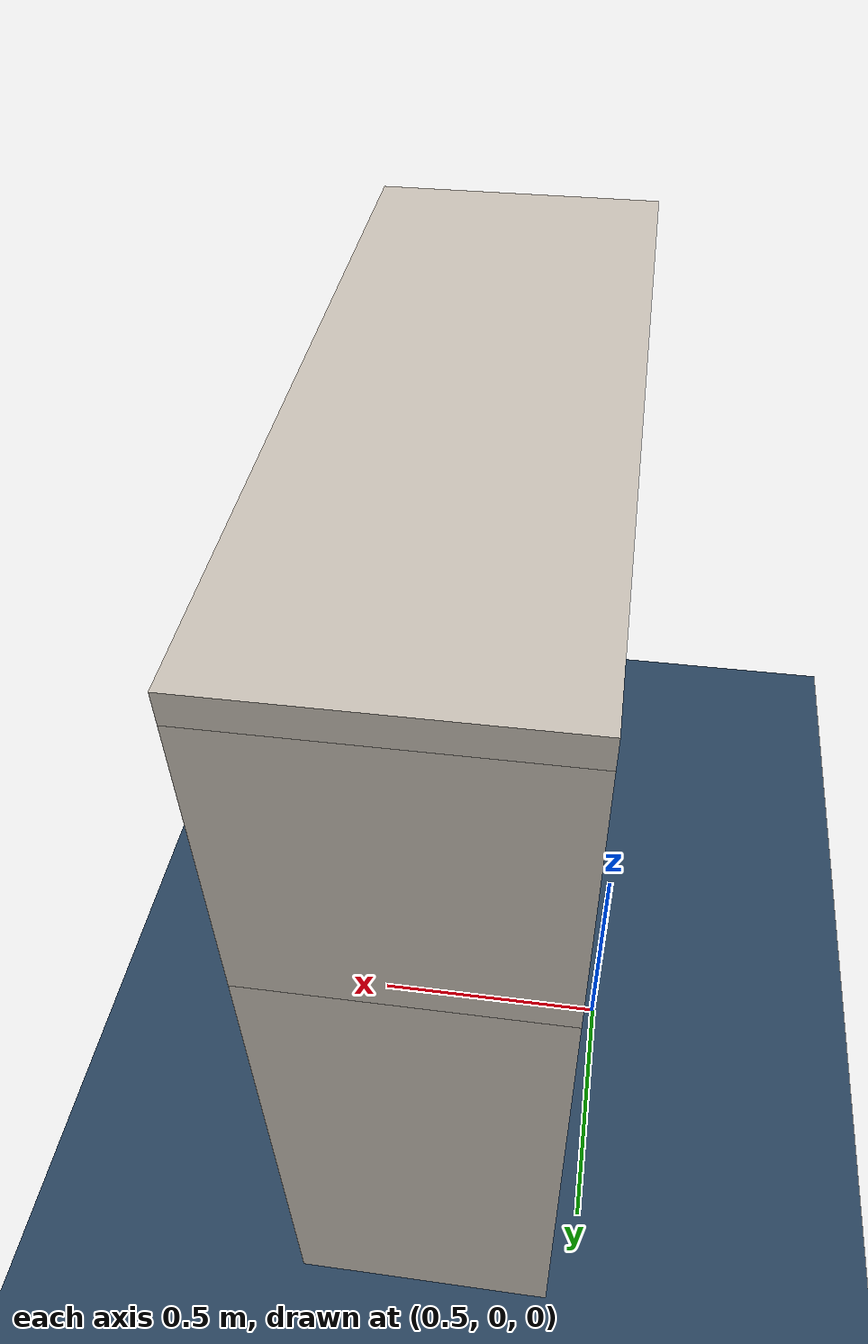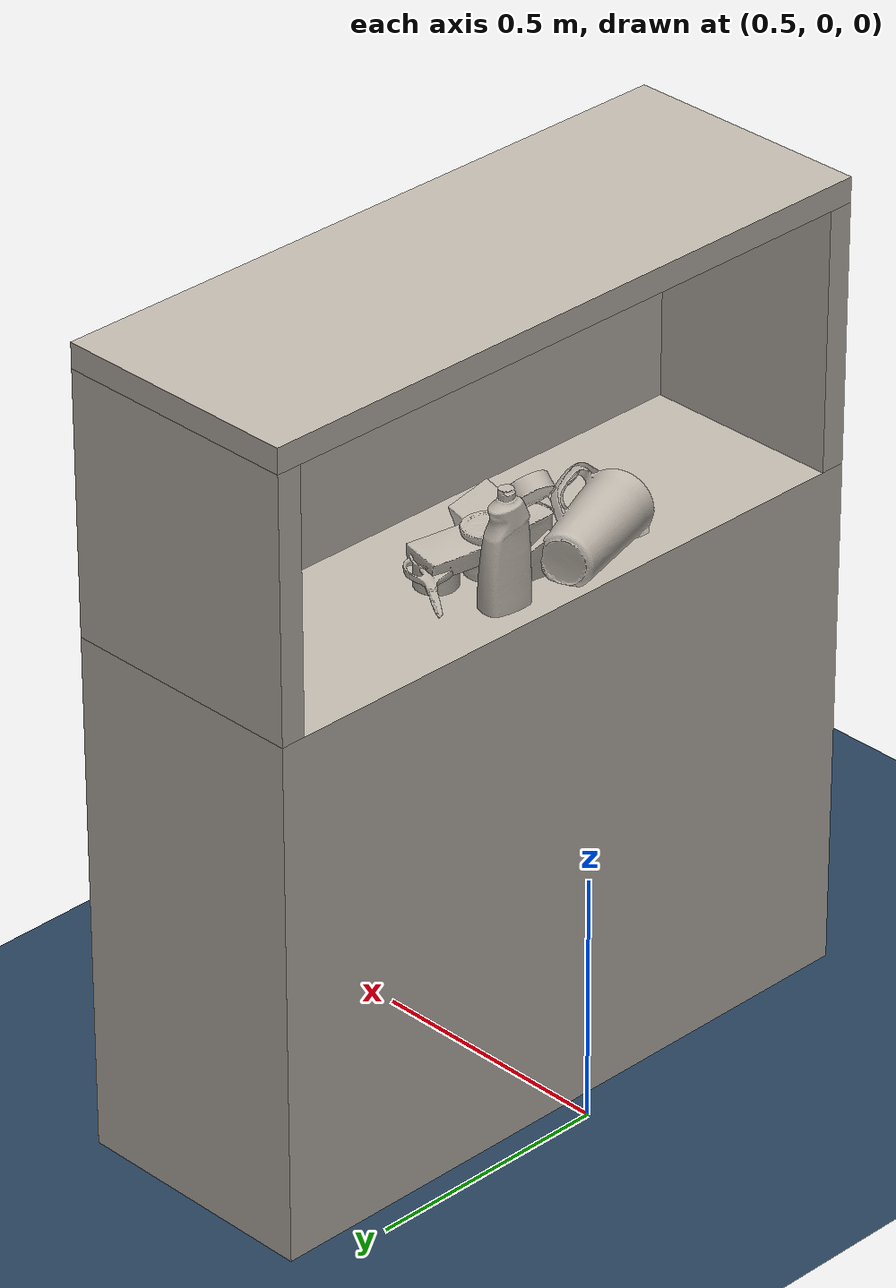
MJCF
<mujoco model="World">

  <compiler angle="radian" balanceinertia="true" inertiafromgeom="true" meshdir="/home/pracsys/GraspClutter6D_local" texturedir="/home/pracsys/GraspClutter6D_local" autolimits="true" />

  <option integrator="Euler" cone="elliptic" solver="CG" noslip_iterations="2">
    <flag warmstart="disable" multiccd="enable" />
  </option>

  <default>
    <geom density="10" />
  </default>

  <asset>

    <texture type="skybox" builtin="flat" rgb1="1 1 1" rgb2="0 0 0" width="512" height="512" />
    <texture name="grid" type="2d" builtin="checker" width="512" height="512" rgb1=".1 .2 .3" rgb2=".2 .3 .4" />
    <material name="grid" texture="grid" texrepeat="2 2" texuniform="true" specular="0" shininess="0" reflectance="0" emission="1" />

    <texture file="models/rs_table/ceramic.png" type="cube" name="tex-ceramic" />
    <material name="table_ceramic" reflectance="0.0" shininess="0.0" specular="0.2" texrepeat="1 1" texture="tex-ceramic" />
  <texture name="obj_000001_0_tex" type="2d" file="models_obj_m/obj_000001/obj_000001.png" /><material name="obj_000001_0_mat" texture="obj_000001_0_tex" specular="1.0" shininess="0.0" /><mesh name="obj_000001_0_vis" file="models_obj_m/obj_000001/obj_000001.obj" /><mesh name="obj_000001_0_obj_000001_collision_0" file="models_obj_m/obj_000001/obj_000001_collision_0.obj" /><mesh name="obj_000001_0_obj_000001_collision_1" file="models_obj_m/obj_000001/obj_000001_collision_1.obj" /><mesh name="obj_000001_0_obj_000001_collision_2" file="models_obj_m/obj_000001/obj_000001_collision_2.obj" /><mesh name="obj_000001_0_obj_000001_collision_3" file="models_obj_m/obj_000001/obj_000001_collision_3.obj" /><texture name="obj_000003_0_tex" type="2d" file="models_obj_m/obj_000003/obj_000003.png" /><material name="obj_000003_0_mat" texture="obj_000003_0_tex" specular="1.0" shininess="0.0" /><mesh name="obj_000003_0_vis" file="models_obj_m/obj_000003/obj_000003.obj" /><mesh name="obj_000003_0_obj_000003_collision_0" file="models_obj_m/obj_000003/obj_000003_collision_0.obj" /><mesh name="obj_000003_0_obj_000003_collision_1" file="models_obj_m/obj_000003/obj_000003_collision_1.obj" /><texture name="obj_000006_0_tex" type="2d" file="models_obj_m/obj_000006/obj_000006.png" /><material name="obj_000006_0_mat" texture="obj_000006_0_tex" specular="1.0" shininess="0.0" /><mesh name="obj_000006_0_vis" file="models_obj_m/obj_000006/obj_000006.obj" /><mesh name="obj_000006_0_obj_000006_collision_0" file="models_obj_m/obj_000006/obj_000006_collision_0.obj" /><mesh name="obj_000006_0_obj_000006_collision_1" file="models_obj_m/obj_000006/obj_000006_collision_1.obj" /><mesh name="obj_000006_0_obj_000006_collision_2" file="models_obj_m/obj_000006/obj_000006_collision_2.obj" /><mesh name="obj_000006_0_obj_000006_collision_3" file="models_obj_m/obj_000006/obj_000006_collision_3.obj" /><mesh name="obj_000006_0_obj_000006_collision_4" file="models_obj_m/obj_000006/obj_000006_collision_4.obj" /><mesh name="obj_000006_0_obj_000006_collision_5" file="models_obj_m/obj_000006/obj_000006_collision_5.obj" /><mesh name="obj_000006_0_obj_000006_collision_6" file="models_obj_m/obj_000006/obj_000006_collision_6.obj" /><mesh name="obj_000006_0_obj_000006_collision_7" file="models_obj_m/obj_000006/obj_000006_collision_7.obj" /><mesh name="obj_000006_0_obj_000006_collision_8" file="models_obj_m/obj_000006/obj_000006_collision_8.obj" /><mesh name="obj_000006_0_obj_000006_collision_9" file="models_obj_m/obj_000006/obj_000006_collision_9.obj" /><mesh name="obj_000006_0_obj_000006_collision_10" file="models_obj_m/obj_000006/obj_000006_collision_10.obj" /><mesh name="obj_000006_0_obj_000006_collision_11" file="models_obj_m/obj_000006/obj_000006_collision_11.obj" /><mesh name="obj_000006_0_obj_000006_collision_12" file="models_obj_m/obj_000006/obj_000006_collision_12.obj" /><mesh name="obj_000006_0_obj_000006_collision_13" file="models_obj_m/obj_000006/obj_000006_collision_13.obj" /><texture name="obj_000007_0_tex" type="2d" file="models_obj_m/obj_000007/obj_000007.png" /><material name="obj_000007_0_mat" texture="obj_000007_0_tex" specular="1.0" shininess="0.0" /><mesh name="obj_000007_0_vis" file="models_obj_m/obj_000007/obj_000007.obj" /><mesh name="obj_000007_0_obj_000007_collision_0" file="models_obj_m/obj_000007/obj_000007_collision_0.obj" /><mesh name="obj_000007_0_obj_000007_collision_1" file="models_obj_m/obj_000007/obj_000007_collision_1.obj" /><mesh name="obj_000007_0_obj_000007_collision_2" file="models_obj_m/obj_000007/obj_000007_collision_2.obj" /><mesh name="obj_000007_0_obj_000007_collision_3" file="models_obj_m/obj_000007/obj_000007_collision_3.obj" /><mesh name="obj_000007_0_obj_000007_collision_4" file="models_obj_m/obj_000007/obj_000007_collision_4.obj" /><mesh name="obj_000007_0_obj_000007_collision_5" file="models_obj_m/obj_000007/obj_000007_collision_5.obj" /><mesh name="obj_000007_0_obj_000007_collision_6" file="models_obj_m/obj_000007/obj_000007_collision_6.obj" /><mesh name="obj_000007_0_obj_000007_collision_7" file="models_obj_m/obj_000007/obj_000007_collision_7.obj" /><mesh name="obj_000007_0_obj_000007_collision_8" file="models_obj_m/obj_000007/obj_000007_collision_8.obj" /><texture name="obj_000009_0_tex" type="2d" file="models_obj_m/obj_000009/obj_000010.png" /><material name="obj_000009_0_mat" texture="obj_000009_0_tex" specular="1.0" shininess="0.0" /><mesh name="obj_000009_0_vis" file="models_obj_m/obj_000009/obj_000009.obj" /><mesh name="obj_000009_0_obj_000009_collision_0" file="models_obj_m/obj_000009/obj_000009_collision_0.obj" /><mesh name="obj_000009_0_obj_000009_collision_1" file="models_obj_m/obj_000009/obj_000009_collision_1.obj" /><mesh name="obj_000009_0_obj_000009_collision_2" file="models_obj_m/obj_000009/obj_000009_collision_2.obj" /><mesh name="obj_000009_0_obj_000009_collision_3" file="models_obj_m/obj_000009/obj_000009_collision_3.obj" /><mesh name="obj_000009_0_obj_000009_collision_4" file="models_obj_m/obj_000009/obj_000009_collision_4.obj" /><mesh name="obj_000009_0_obj_000009_collision_5" file="models_obj_m/obj_000009/obj_000009_collision_5.obj" /><mesh name="obj_000009_0_obj_000009_collision_6" file="models_obj_m/obj_000009/obj_000009_collision_6.obj" /><mesh name="obj_000009_0_obj_000009_collision_7" file="models_obj_m/obj_000009/obj_000009_collision_7.obj" /><mesh name="obj_000009_0_obj_000009_collision_8" file="models_obj_m/obj_000009/obj_000009_collision_8.obj" /><mesh name="obj_000009_0_obj_000009_collision_9" file="models_obj_m/obj_000009/obj_000009_collision_9.obj" /><mesh name="obj_000009_0_obj_000009_collision_10" file="models_obj_m/obj_000009/obj_000009_collision_10.obj" /><mesh name="obj_000009_0_obj_000009_collision_11" file="models_obj_m/obj_000009/obj_000009_collision_11.obj" /><mesh name="obj_000009_0_obj_000009_collision_12" file="models_obj_m/obj_000009/obj_000009_collision_12.obj" /><mesh name="obj_000009_0_obj_000009_collision_13" file="models_obj_m/obj_000009/obj_000009_collision_13.obj" /><mesh name="obj_000009_0_obj_000009_collision_14" file="models_obj_m/obj_000009/obj_000009_collision_14.obj" /><mesh name="obj_000009_0_obj_000009_collision_15" file="models_obj_m/obj_000009/obj_000009_collision_15.obj" /><mesh name="obj_000009_0_obj_000009_collision_16" file="models_obj_m/obj_000009/obj_000009_collision_16.obj" /><mesh name="obj_000009_0_obj_000009_collision_17" file="models_obj_m/obj_000009/obj_000009_collision_17.obj" /><mesh name="obj_000009_0_obj_000009_collision_18" file="models_obj_m/obj_000009/obj_000009_collision_18.obj" /><mesh name="obj_000009_0_obj_000009_collision_19" file="models_obj_m/obj_000009/obj_000009_collision_19.obj" /><texture name="obj_000011_0_tex" type="2d" file="models_obj_m/obj_000011/obj_000011.png" /><material name="obj_000011_0_mat" texture="obj_000011_0_tex" specular="1.0" shininess="0.0" /><mesh name="obj_000011_0_vis" file="models_obj_m/obj_000011/obj_000011.obj" /><mesh name="obj_000011_0_obj_000011_collision_0" file="models_obj_m/obj_000011/obj_000011_collision_0.obj" /><mesh name="obj_000011_0_obj_000011_collision_1" file="models_obj_m/obj_000011/obj_000011_collision_1.obj" /><texture name="obj_000012_0_tex" type="2d" file="models_obj_m/obj_000012/obj_000013.png" /><material name="obj_000012_0_mat" texture="obj_000012_0_tex" specular="1.0" shininess="0.0" /><mesh name="obj_000012_0_vis" file="models_obj_m/obj_000012/obj_000012.obj" /><mesh name="obj_000012_0_obj_000012_collision_0" file="models_obj_m/obj_000012/obj_000012_collision_0.obj" /><mesh name="obj_000012_0_obj_000012_collision_1" file="models_obj_m/obj_000012/obj_000012_collision_1.obj" /><mesh name="obj_000012_0_obj_000012_collision_2" file="models_obj_m/obj_000012/obj_000012_collision_2.obj" /><texture name="obj_000014_0_tex" type="2d" file="models_obj_m/obj_000014/obj_000014.png" /><material name="obj_000014_0_mat" texture="obj_000014_0_tex" specular="1.0" shininess="0.0" /><mesh name="obj_000014_0_vis" file="models_obj_m/obj_000014/obj_000014.obj" /><mesh name="obj_000014_0_obj_000014_collision_0" file="models_obj_m/obj_000014/obj_000014_collision_0.obj" /><mesh name="obj_000014_0_obj_000014_collision_1" file="models_obj_m/obj_000014/obj_000014_collision_1.obj" /><mesh name="obj_000014_0_obj_000014_collision_2" file="models_obj_m/obj_000014/obj_000014_collision_2.obj" /><mesh name="obj_000014_0_obj_000014_collision_3" file="models_obj_m/obj_000014/obj_000014_collision_3.obj" /><mesh name="obj_000014_0_obj_000014_collision_4" file="models_obj_m/obj_000014/obj_000014_collision_4.obj" /><mesh name="obj_000014_0_obj_000014_collision_5" file="models_obj_m/obj_000014/obj_000014_collision_5.obj" /><mesh name="obj_000014_0_obj_000014_collision_6" file="models_obj_m/obj_000014/obj_000014_collision_6.obj" /><mesh name="obj_000014_0_obj_000014_collision_7" file="models_obj_m/obj_000014/obj_000014_collision_7.obj" /><mesh name="obj_000014_0_obj_000014_collision_8" file="models_obj_m/obj_000014/obj_000014_collision_8.obj" /><mesh name="obj_000014_0_obj_000014_collision_9" file="models_obj_m/obj_000014/obj_000014_collision_9.obj" /><mesh name="obj_000014_0_obj_000014_collision_10" file="models_obj_m/obj_000014/obj_000014_collision_10.obj" /><mesh name="obj_000014_0_obj_000014_collision_11" file="models_obj_m/obj_000014/obj_000014_collision_11.obj" /><mesh name="obj_000014_0_obj_000014_collision_12" file="models_obj_m/obj_000014/obj_000014_collision_12.obj" /><mesh name="obj_000014_0_obj_000014_collision_13" file="models_obj_m/obj_000014/obj_000014_collision_13.obj" /><mesh name="obj_000014_0_obj_000014_collision_14" file="models_obj_m/obj_000014/obj_000014_collision_14.obj" /><mesh name="obj_000014_0_obj_000014_collision_15" file="models_obj_m/obj_000014/obj_000014_collision_15.obj" /><mesh name="obj_000014_0_obj_000014_collision_16" file="models_obj_m/obj_000014/obj_000014_collision_16.obj" /><mesh name="obj_000014_0_obj_000014_collision_17" file="models_obj_m/obj_000014/obj_000014_collision_17.obj" /><mesh name="obj_000014_0_obj_000014_collision_18" file="models_obj_m/obj_000014/obj_000014_collision_18.obj" /><mesh name="obj_000014_0_obj_000014_collision_19" file="models_obj_m/obj_000014/obj_000014_collision_19.obj" /><mesh name="obj_000014_0_obj_000014_collision_20" file="models_obj_m/obj_000014/obj_000014_collision_20.obj" /><mesh name="obj_000014_0_obj_000014_collision_21" file="models_obj_m/obj_000014/obj_000014_collision_21.obj" /><mesh name="obj_000014_0_obj_000014_collision_22" file="models_obj_m/obj_000014/obj_000014_collision_22.obj" /><mesh name="obj_000014_0_obj_000014_collision_23" file="models_obj_m/obj_000014/obj_000014_collision_23.obj" /><mesh name="obj_000014_0_obj_000014_collision_24" file="models_obj_m/obj_000014/obj_000014_collision_24.obj" /><mesh name="obj_000014_0_obj_000014_collision_25" file="models_obj_m/obj_000014/obj_000014_collision_25.obj" /><mesh name="obj_000014_0_obj_000014_collision_26" file="models_obj_m/obj_000014/obj_000014_collision_26.obj" /><mesh name="obj_000014_0_obj_000014_collision_27" file="models_obj_m/obj_000014/obj_000014_collision_27.obj" /><mesh name="obj_000014_0_obj_000014_collision_28" file="models_obj_m/obj_000014/obj_000014_collision_28.obj" /><mesh name="obj_000014_0_obj_000014_collision_29" file="models_obj_m/obj_000014/obj_000014_collision_29.obj" /><mesh name="obj_000014_0_obj_000014_collision_30" file="models_obj_m/obj_000014/obj_000014_collision_30.obj" /><mesh name="obj_000014_0_obj_000014_collision_31" file="models_obj_m/obj_000014/obj_000014_collision_31.obj" /><mesh name="obj_000014_0_obj_000014_collision_32" file="models_obj_m/obj_000014/obj_000014_collision_32.obj" /><mesh name="obj_000014_0_obj_000014_collision_33" file="models_obj_m/obj_000014/obj_000014_collision_33.obj" /><mesh name="obj_000014_0_obj_000014_collision_34" file="models_obj_m/obj_000014/obj_000014_collision_34.obj" /><mesh name="obj_000014_0_obj_000014_collision_35" file="models_obj_m/obj_000014/obj_000014_collision_35.obj" /><mesh name="obj_000014_0_obj_000014_collision_36" file="models_obj_m/obj_000014/obj_000014_collision_36.obj" /><mesh name="obj_000014_0_obj_000014_collision_37" file="models_obj_m/obj_000014/obj_000014_collision_37.obj" /><mesh name="obj_000014_0_obj_000014_collision_38" file="models_obj_m/obj_000014/obj_000014_collision_38.obj" /><texture name="obj_000016_0_tex" type="2d" file="models_obj_m/obj_000016/obj_000016.png" /><material name="obj_000016_0_mat" texture="obj_000016_0_tex" specular="1.0" shininess="0.0" /><mesh name="obj_000016_0_vis" file="models_obj_m/obj_000016/obj_000016.obj" /><mesh name="obj_000016_0_obj_000016_collision_0" file="models_obj_m/obj_000016/obj_000016_collision_0.obj" /><mesh name="obj_000016_0_obj_000016_collision_1" file="models_obj_m/obj_000016/obj_000016_collision_1.obj" /><texture name="obj_000017_0_tex" type="2d" file="models_obj_m/obj_000017/obj_000018.png" /><material name="obj_000017_0_mat" texture="obj_000017_0_tex" specular="1.0" shininess="0.0" /><mesh name="obj_000017_0_vis" file="models_obj_m/obj_000017/obj_000017.obj" /><mesh name="obj_000017_0_obj_000017_collision_0" file="models_obj_m/obj_000017/obj_000017_collision_0.obj" /><mesh name="obj_000017_0_obj_000017_collision_1" file="models_obj_m/obj_000017/obj_000017_collision_1.obj" /><mesh name="obj_000017_0_obj_000017_collision_2" file="models_obj_m/obj_000017/obj_000017_collision_2.obj" /><mesh name="obj_000017_0_obj_000017_collision_3" file="models_obj_m/obj_000017/obj_000017_collision_3.obj" /><mesh name="obj_000017_0_obj_000017_collision_4" file="models_obj_m/obj_000017/obj_000017_collision_4.obj" /><mesh name="obj_000017_0_obj_000017_collision_5" file="models_obj_m/obj_000017/obj_000017_collision_5.obj" /><mesh name="obj_000017_0_obj_000017_collision_6" file="models_obj_m/obj_000017/obj_000017_collision_6.obj" /><mesh name="obj_000017_0_obj_000017_collision_7" file="models_obj_m/obj_000017/obj_000017_collision_7.obj" /><mesh name="obj_000017_0_obj_000017_collision_8" file="models_obj_m/obj_000017/obj_000017_collision_8.obj" /><mesh name="obj_000017_0_obj_000017_collision_9" file="models_obj_m/obj_000017/obj_000017_collision_9.obj" /><mesh name="obj_000017_0_obj_000017_collision_10" file="models_obj_m/obj_000017/obj_000017_collision_10.obj" /><mesh name="obj_000017_0_obj_000017_collision_11" file="models_obj_m/obj_000017/obj_000017_collision_11.obj" /><mesh name="obj_000017_0_obj_000017_collision_12" file="models_obj_m/obj_000017/obj_000017_collision_12.obj" /><mesh name="obj_000017_0_obj_000017_collision_13" file="models_obj_m/obj_000017/obj_000017_collision_13.obj" /><mesh name="obj_000017_0_obj_000017_collision_14" file="models_obj_m/obj_000017/obj_000017_collision_14.obj" /><mesh name="obj_000017_0_obj_000017_collision_15" file="models_obj_m/obj_000017/obj_000017_collision_15.obj" /><mesh name="obj_000017_0_obj_000017_collision_16" file="models_obj_m/obj_000017/obj_000017_collision_16.obj" /><mesh name="obj_000017_0_obj_000017_collision_17" file="models_obj_m/obj_000017/obj_000017_collision_17.obj" /><mesh name="obj_000017_0_obj_000017_collision_18" file="models_obj_m/obj_000017/obj_000017_collision_18.obj" /><mesh name="obj_000017_0_obj_000017_collision_19" file="models_obj_m/obj_000017/obj_000017_collision_19.obj" /><mesh name="obj_000017_0_obj_000017_collision_20" file="models_obj_m/obj_000017/obj_000017_collision_20.obj" /><mesh name="obj_000017_0_obj_000017_collision_21" file="models_obj_m/obj_000017/obj_000017_collision_21.obj" /><mesh name="obj_000017_0_obj_000017_collision_22" file="models_obj_m/obj_000017/obj_000017_collision_22.obj" /><mesh name="obj_000017_0_obj_000017_collision_23" file="models_obj_m/obj_000017/obj_000017_collision_23.obj" /><mesh name="obj_000017_0_obj_000017_collision_24" file="models_obj_m/obj_000017/obj_000017_collision_24.obj" /><mesh name="obj_000017_0_obj_000017_collision_25" file="models_obj_m/obj_000017/obj_000017_collision_25.obj" /><mesh name="obj_000017_0_obj_000017_collision_26" file="models_obj_m/obj_000017/obj_000017_collision_26.obj" /><mesh name="obj_000017_0_obj_000017_collision_27" file="models_obj_m/obj_000017/obj_000017_collision_27.obj" /></asset>

  <worldbody>
    <geom name="floor" size="2 2 0.05" type="plane" material="grid" condim="3" />
    <light directional="true" pos="-0.5 0.5 3" dir="0 0 -1" castshadow="false" diffuse="1 1 1" />
    <body name="workspace" pos="0.8 0 0">
      <geom name="shelf_bottom" size="0.25 0.68 0.525" pos="0 0 0.525" type="box" material="table_ceramic" />
      <geom name="shelf_top" size="0.25 0.68 0.025" pos="0 0 1.595" type="box" material="table_ceramic" />
      <geom name="shelf_padding_left" size="0.25 0.025 0.26" pos="0 -0.655 1.31" type="box" material="table_ceramic" />
      <geom name="shelf_padding_right" size="0.25 0.025 0.26" pos="0 0.655 1.31" type="box" material="table_ceramic" />
      <geom name="shelf_padding_back" size="0.05 0.63 0.26" pos="0.2 0 1.31" type="box" material="table_ceramic" />
    </body>
  <body name="obj_000001_0" pos="0.7245698177176012 0.024179529262956884 1.0688049012991612" quat="0.6593119507459271 -0.01876848982819013 0.0016404612545248831 -0.7516334241370872"><joint name="obj_000001_0_joint" type="free" limited="false" actuatorfrclimited="false" /><geom name="obj_000001_0_geom" type="mesh" contype="0" conaffinity="0" group="1" mesh="obj_000001_0_vis" material="obj_000001_0_mat" /><geom type="mesh" contype="3" conaffinity="3" group="3" rgba="0.9088700260871841 0.5571276366315294 0.02905709149002622 1" mesh="obj_000001_0_obj_000001_collision_0" /><geom type="mesh" contype="3" conaffinity="3" group="3" rgba="0.6410593324381463 0.8402607000713928 0.7776918396385317 1" mesh="obj_000001_0_obj_000001_collision_1" /><geom type="mesh" contype="3" conaffinity="3" group="3" rgba="0.7741652165627951 0.3179101861807435 0.21643336209038533 1" mesh="obj_000001_0_obj_000001_collision_2" /><geom type="mesh" contype="3" conaffinity="3" group="3" rgba="0.8899250795032356 0.5115007140285017 0.5329157655053317 1" mesh="obj_000001_0_obj_000001_collision_3" /></body><body name="obj_000003_0" pos="0.6994115541259565 -0.0999912434738991 1.074816696796771" quat="0.2267660082206349 -0.8119123838294886 -0.4430720355865948 0.3050616819286677"><joint name="obj_000003_0_joint" type="free" limited="false" actuatorfrclimited="false" /><geom name="obj_000003_0_geom" type="mesh" contype="0" conaffinity="0" group="1" mesh="obj_000003_0_vis" material="obj_000003_0_mat" /><geom type="mesh" contype="3" conaffinity="3" group="3" rgba="0.522509730671621 0.2757706064801614 0.3354227120316712 1" mesh="obj_000003_0_obj_000003_collision_0" /><geom type="mesh" contype="3" conaffinity="3" group="3" rgba="0.5516880957351997 0.30786775055087157 0.8022185455408283 1" mesh="obj_000003_0_obj_000003_collision_1" /></body><body name="obj_000006_0" pos="0.6725691595237946 -0.01792990980877382 1.211666329774467" quat="0.06437058560630127 0.8551109280938193 -0.29467419484890534 -0.4216738636118891"><joint name="obj_000006_0_joint" type="free" limited="false" actuatorfrclimited="false" /><geom name="obj_000006_0_geom" type="mesh" contype="0" conaffinity="0" group="1" mesh="obj_000006_0_vis" material="obj_000006_0_mat" /><geom type="mesh" contype="3" conaffinity="3" group="3" rgba="0.2826735963389645 0.3732613789385052 0.7850961502526286 1" mesh="obj_000006_0_obj_000006_collision_0" /><geom type="mesh" contype="3" conaffinity="3" group="3" rgba="0.2778119464286495 0.852700815001951 0.9131251478975895 1" mesh="obj_000006_0_obj_000006_collision_1" /><geom type="mesh" contype="3" conaffinity="3" group="3" rgba="0.8020587813288036 0.3025792521954269 0.26202108232011456 1" mesh="obj_000006_0_obj_000006_collision_2" /><geom type="mesh" contype="3" conaffinity="3" group="3" rgba="0.8749284451958235 0.7193776905239141 0.13458988549502138 1" mesh="obj_000006_0_obj_000006_collision_3" /><geom type="mesh" contype="3" conaffinity="3" group="3" rgba="0.2130188599738736 0.6558868892940936 0.9509039115354172 1" mesh="obj_000006_0_obj_000006_collision_4" /><geom type="mesh" contype="3" conaffinity="3" group="3" rgba="0.7150440817211193 0.6337582813459244 0.5959789356841197 1" mesh="obj_000006_0_obj_000006_collision_5" /><geom type="mesh" contype="3" conaffinity="3" group="3" rgba="0.5914430060148156 0.6397733981720453 0.4770481905761884 1" mesh="obj_000006_0_obj_000006_collision_6" /><geom type="mesh" contype="3" conaffinity="3" group="3" rgba="0.5370695134833949 0.5650036394015392 0.4193565416983073 1" mesh="obj_000006_0_obj_000006_collision_7" /><geom type="mesh" contype="3" conaffinity="3" group="3" rgba="0.45822516380627654 0.5322962868917284 0.22216684784693663 1" mesh="obj_000006_0_obj_000006_collision_8" /><geom type="mesh" contype="3" conaffinity="3" group="3" rgba="0.006992755819853924 0.22617836990136309 0.6404316243166618 1" mesh="obj_000006_0_obj_000006_collision_9" /><geom type="mesh" contype="3" conaffinity="3" group="3" rgba="0.11371882398649225 0.6403057750389807 0.6565213489306491 1" mesh="obj_000006_0_obj_000006_collision_10" /><geom type="mesh" contype="3" conaffinity="3" group="3" rgba="0.5479453169554588 0.8715696065342489 0.8827485230284868 1" mesh="obj_000006_0_obj_000006_collision_11" /><geom type="mesh" contype="3" conaffinity="3" group="3" rgba="0.29639456023491106 0.716942263751537 0.6685544064500213 1" mesh="obj_000006_0_obj_000006_collision_12" /><geom type="mesh" contype="3" conaffinity="3" group="3" rgba="0.24060769408938665 0.11426077536513679 0.6643453630239089 1" mesh="obj_000006_0_obj_000006_collision_13" /></body><body name="obj_000007_0" pos="0.7475203179038512 0.10758815512826281 1.1062607629790526" quat="0.4274032105077631 0.015892959352612715 -0.0122699750251547 -0.903838125553218"><joint name="obj_000007_0_joint" type="free" limited="false" actuatorfrclimited="false" /><geom name="obj_000007_0_geom" type="mesh" contype="0" conaffinity="0" group="1" mesh="obj_000007_0_vis" material="obj_000007_0_mat" /><geom type="mesh" contype="3" conaffinity="3" group="3" rgba="0.8352706854217573 0.9362994234831694 0.293846875833475 1" mesh="obj_000007_0_obj_000007_collision_0" /><geom type="mesh" contype="3" conaffinity="3" group="3" rgba="0.19905331661291714 0.4589533019713804 0.06900329109829795 1" mesh="obj_000007_0_obj_000007_collision_1" /><geom type="mesh" contype="3" conaffinity="3" group="3" rgba="0.09308414112438301 0.15050338013169284 0.9151604575537959 1" mesh="obj_000007_0_obj_000007_collision_2" /><geom type="mesh" contype="3" conaffinity="3" group="3" rgba="0.5321495441159548 0.7015834228771671 0.15224241133161276 1" mesh="obj_000007_0_obj_000007_collision_3" /><geom type="mesh" contype="3" conaffinity="3" group="3" rgba="0.23157390654164967 0.05668202494056429 0.16362068486781922 1" mesh="obj_000007_0_obj_000007_collision_4" /><geom type="mesh" contype="3" conaffinity="3" group="3" rgba="0.434682609159569 0.02891498183785912 0.4135716003922958 1" mesh="obj_000007_0_obj_000007_collision_5" /><geom type="mesh" contype="3" conaffinity="3" group="3" rgba="0.3986174188827881 0.6060589903191558 0.6080009673791554 1" mesh="obj_000007_0_obj_000007_collision_6" /><geom type="mesh" contype="3" conaffinity="3" group="3" rgba="0.19756852407433856 0.9438271125215391 0.3383181352472745 1" mesh="obj_000007_0_obj_000007_collision_7" /><geom type="mesh" contype="3" conaffinity="3" group="3" rgba="0.8336516710698538 0.1310754047491739 0.3201867808203366 1" mesh="obj_000007_0_obj_000007_collision_8" /></body><body name="obj_000009_0" pos="0.6757380840162048 -0.013723726581941292 1.1202671559841644" quat="0.724891172863196 0.0037221800408121716 0.0018112822855675947 0.6888509651130975"><joint name="obj_000009_0_joint" type="free" limited="false" actuatorfrclimited="false" /><geom name="obj_000009_0_geom" type="mesh" contype="0" conaffinity="0" group="1" mesh="obj_000009_0_vis" material="obj_000009_0_mat" /><geom type="mesh" contype="3" conaffinity="3" group="3" rgba="0.4701424646800718 0.15058678152224558 0.03232555140522908 1" mesh="obj_000009_0_obj_000009_collision_0" /><geom type="mesh" contype="3" conaffinity="3" group="3" rgba="0.6334264391293729 0.7000588704139452 0.9101191958261439 1" mesh="obj_000009_0_obj_000009_collision_1" /><geom type="mesh" contype="3" conaffinity="3" group="3" rgba="0.4796571013469104 0.35150290582234567 0.6375226777586448 1" mesh="obj_000009_0_obj_000009_collision_2" /><geom type="mesh" contype="3" conaffinity="3" group="3" rgba="0.8005895298046106 0.9629796370374781 0.317100801488033 1" mesh="obj_000009_0_obj_000009_collision_3" /><geom type="mesh" contype="3" conaffinity="3" group="3" rgba="0.7316817429575484 0.8125950918942385 0.9770420869852225 1" mesh="obj_000009_0_obj_000009_collision_4" /><geom type="mesh" contype="3" conaffinity="3" group="3" rgba="0.027540659115147248 0.9471989066929749 0.9744029211039258 1" mesh="obj_000009_0_obj_000009_collision_5" /><geom type="mesh" contype="3" conaffinity="3" group="3" rgba="0.2468027165587915 0.11355498828593935 0.640482643727051 1" mesh="obj_000009_0_obj_000009_collision_6" /><geom type="mesh" contype="3" conaffinity="3" group="3" rgba="0.26381115444349046 0.5064233410291425 0.06434432684247016 1" mesh="obj_000009_0_obj_000009_collision_7" /><geom type="mesh" contype="3" conaffinity="3" group="3" rgba="0.39104113124687934 0.2576147934487044 0.9823472559836796 1" mesh="obj_000009_0_obj_000009_collision_8" /><geom type="mesh" contype="3" conaffinity="3" group="3" rgba="0.9013360285468692 0.8336454994592718 0.7736518361085535 1" mesh="obj_000009_0_obj_000009_collision_9" /><geom type="mesh" contype="3" conaffinity="3" group="3" rgba="0.5638034510545271 0.2309865979911192 0.056178319664080933 1" mesh="obj_000009_0_obj_000009_collision_10" /><geom type="mesh" contype="3" conaffinity="3" group="3" rgba="0.07539982230460429 0.8840212053523439 0.37940438346802385 1" mesh="obj_000009_0_obj_000009_collision_11" /><geom type="mesh" contype="3" conaffinity="3" group="3" rgba="0.12997684997558534 0.2197119572502484 0.7348773851044048 1" mesh="obj_000009_0_obj_000009_collision_12" /><geom type="mesh" contype="3" conaffinity="3" group="3" rgba="0.4102032814193337 0.31374038786638225 0.9229380645994204 1" mesh="obj_000009_0_obj_000009_collision_13" /><geom type="mesh" contype="3" conaffinity="3" group="3" rgba="0.6775180913271598 0.3730860518815964 0.7560922645576079 1" mesh="obj_000009_0_obj_000009_collision_14" /><geom type="mesh" contype="3" conaffinity="3" group="3" rgba="0.20013413652544576 0.046709010626810876 0.4530831720844085 1" mesh="obj_000009_0_obj_000009_collision_15" /><geom type="mesh" contype="3" conaffinity="3" group="3" rgba="0.997743233778264 0.8720065066436486 0.22893873285390964 1" mesh="obj_000009_0_obj_000009_collision_16" /><geom type="mesh" contype="3" conaffinity="3" group="3" rgba="0.2486444461791405 0.8482398554397806 0.9913239367051718 1" mesh="obj_000009_0_obj_000009_collision_17" /><geom type="mesh" contype="3" conaffinity="3" group="3" rgba="0.8552881572534362 0.878526833870521 0.5714311973878448 1" mesh="obj_000009_0_obj_000009_collision_18" /><geom type="mesh" contype="3" conaffinity="3" group="3" rgba="0.6375258423342278 0.3334964947472784 0.042644175833863374 1" mesh="obj_000009_0_obj_000009_collision_19" /></body><body name="obj_000011_0" pos="0.6495585203816787 -0.13977933869306955 1.098293575181354" quat="0.6904436468919618 0.7017309223998565 0.12032141303311339 0.12800015851587748"><joint name="obj_000011_0_joint" type="free" limited="false" actuatorfrclimited="false" /><geom name="obj_000011_0_geom" type="mesh" contype="0" conaffinity="0" group="1" mesh="obj_000011_0_vis" material="obj_000011_0_mat" /><geom type="mesh" contype="3" conaffinity="3" group="3" rgba="0.30507868086283874 0.9701993068122707 0.0021639835779936334 1" mesh="obj_000011_0_obj_000011_collision_0" /><geom type="mesh" contype="3" conaffinity="3" group="3" rgba="0.30046086308937203 0.33184924156596896 0.2382777103232726 1" mesh="obj_000011_0_obj_000011_collision_1" /></body><body name="obj_000012_0" pos="0.626461926020278 0.09133862326412662 1.148777561382147" quat="0.6674003403523239 -0.006876273591183221 0.013066005288060456 -0.7445527396127916"><joint name="obj_000012_0_joint" type="free" limited="false" actuatorfrclimited="false" /><geom name="obj_000012_0_geom" type="mesh" contype="0" conaffinity="0" group="1" mesh="obj_000012_0_vis" material="obj_000012_0_mat" /><geom type="mesh" contype="3" conaffinity="3" group="3" rgba="0.7554614099521485 0.6486382034608017 0.7176584907668884 1" mesh="obj_000012_0_obj_000012_collision_0" /><geom type="mesh" contype="3" conaffinity="3" group="3" rgba="0.7007292636586778 0.4517934483878622 0.09276525431541405 1" mesh="obj_000012_0_obj_000012_collision_1" /><geom type="mesh" contype="3" conaffinity="3" group="3" rgba="0.20665389244215027 0.9686490753588884 0.0818582005279912 1" mesh="obj_000012_0_obj_000012_collision_2" /></body><body name="obj_000014_0" pos="0.7506130240407369 0.11530115565326676 1.0679097220555065" quat="0.6219157023268657 0.00423785189829211 -0.006142560984319312 -0.7830486375411962"><joint name="obj_000014_0_joint" type="free" limited="false" actuatorfrclimited="false" /><geom name="obj_000014_0_geom" type="mesh" contype="0" conaffinity="0" group="1" mesh="obj_000014_0_vis" material="obj_000014_0_mat" /><geom type="mesh" contype="3" conaffinity="3" group="3" rgba="0.16141368952927726 0.8941132712421812 0.5548749728589505 1" mesh="obj_000014_0_obj_000014_collision_0" /><geom type="mesh" contype="3" conaffinity="3" group="3" rgba="0.8498791440201986 0.5078067392722992 0.18104551223069276 1" mesh="obj_000014_0_obj_000014_collision_1" /><geom type="mesh" contype="3" conaffinity="3" group="3" rgba="0.8943954905161718 0.3968195555274622 0.7506667206413482 1" mesh="obj_000014_0_obj_000014_collision_2" /><geom type="mesh" contype="3" conaffinity="3" group="3" rgba="0.35285466454019054 0.3172969522275877 0.7777097891043925 1" mesh="obj_000014_0_obj_000014_collision_3" /><geom type="mesh" contype="3" conaffinity="3" group="3" rgba="0.6717797492805505 0.27468490709077875 0.17325073818140246 1" mesh="obj_000014_0_obj_000014_collision_4" /><geom type="mesh" contype="3" conaffinity="3" group="3" rgba="0.7947496542642261 0.5505795486049172 0.24523806449691898 1" mesh="obj_000014_0_obj_000014_collision_5" /><geom type="mesh" contype="3" conaffinity="3" group="3" rgba="0.055183469003469154 0.8741690348288653 0.6355782986914638 1" mesh="obj_000014_0_obj_000014_collision_6" /><geom type="mesh" contype="3" conaffinity="3" group="3" rgba="0.13714783929055574 0.9099011487118126 0.046849323318082 1" mesh="obj_000014_0_obj_000014_collision_7" /><geom type="mesh" contype="3" conaffinity="3" group="3" rgba="0.5757321500485043 0.7653495890173662 0.11729263428082792 1" mesh="obj_000014_0_obj_000014_collision_8" /><geom type="mesh" contype="3" conaffinity="3" group="3" rgba="0.04262441774970249 0.20853658483044857 0.1703428205193146 1" mesh="obj_000014_0_obj_000014_collision_9" /><geom type="mesh" contype="3" conaffinity="3" group="3" rgba="0.7540479077019692 0.3915149318812796 0.4429325687742387 1" mesh="obj_000014_0_obj_000014_collision_10" /><geom type="mesh" contype="3" conaffinity="3" group="3" rgba="0.9209908675974051 0.10818362438838003 0.6189688407757469 1" mesh="obj_000014_0_obj_000014_collision_11" /><geom type="mesh" contype="3" conaffinity="3" group="3" rgba="0.8239539038983041 0.963565432161378 0.07680378701257484 1" mesh="obj_000014_0_obj_000014_collision_12" /><geom type="mesh" contype="3" conaffinity="3" group="3" rgba="0.3580527646207692 0.9396191389477992 0.6726680134980254 1" mesh="obj_000014_0_obj_000014_collision_13" /><geom type="mesh" contype="3" conaffinity="3" group="3" rgba="0.3187862019948787 0.842895426167915 0.30383779731684313 1" mesh="obj_000014_0_obj_000014_collision_14" /><geom type="mesh" contype="3" conaffinity="3" group="3" rgba="0.8290415048504837 0.43261520532805775 0.4960423319651849 1" mesh="obj_000014_0_obj_000014_collision_15" /><geom type="mesh" contype="3" conaffinity="3" group="3" rgba="0.47137951977516845 0.7080669244219827 0.5190940947326312 1" mesh="obj_000014_0_obj_000014_collision_16" /><geom type="mesh" contype="3" conaffinity="3" group="3" rgba="0.7270019138804638 0.08558543806348451 0.28134693023649016 1" mesh="obj_000014_0_obj_000014_collision_17" /><geom type="mesh" contype="3" conaffinity="3" group="3" rgba="0.2278750701799056 0.45829465031892036 0.24631126738678388 1" mesh="obj_000014_0_obj_000014_collision_18" /><geom type="mesh" contype="3" conaffinity="3" group="3" rgba="0.8345805016638979 0.20150630993040652 0.5303175522053208 1" mesh="obj_000014_0_obj_000014_collision_19" /><geom type="mesh" contype="3" conaffinity="3" group="3" rgba="0.21449831849224799 0.8815788784779822 0.4946040642073185 1" mesh="obj_000014_0_obj_000014_collision_20" /><geom type="mesh" contype="3" conaffinity="3" group="3" rgba="0.5201983270088316 0.07293896462298644 0.47589207267863676 1" mesh="obj_000014_0_obj_000014_collision_21" /><geom type="mesh" contype="3" conaffinity="3" group="3" rgba="0.6790069105260244 0.05281035932712075 0.8960063801553154 1" mesh="obj_000014_0_obj_000014_collision_22" /><geom type="mesh" contype="3" conaffinity="3" group="3" rgba="0.24152118753827823 0.6713577531353322 0.8759765939813601 1" mesh="obj_000014_0_obj_000014_collision_23" /><geom type="mesh" contype="3" conaffinity="3" group="3" rgba="0.8959852812192273 0.6685148885345674 0.043270461595834475 1" mesh="obj_000014_0_obj_000014_collision_24" /><geom type="mesh" contype="3" conaffinity="3" group="3" rgba="0.9103547626218504 0.037810082392731204 0.32968077117363426 1" mesh="obj_000014_0_obj_000014_collision_25" /><geom type="mesh" contype="3" conaffinity="3" group="3" rgba="0.8924690475590995 0.7858539504025231 0.5314529871560677 1" mesh="obj_000014_0_obj_000014_collision_26" /><geom type="mesh" contype="3" conaffinity="3" group="3" rgba="0.8776507752074951 0.006905611208717133 0.13662201660191675 1" mesh="obj_000014_0_obj_000014_collision_27" /><geom type="mesh" contype="3" conaffinity="3" group="3" rgba="0.8980953270074162 0.5018244752305326 0.015371112777743057 1" mesh="obj_000014_0_obj_000014_collision_28" /><geom type="mesh" contype="3" conaffinity="3" group="3" rgba="0.881652186049792 0.6680883818245129 0.8030035683379387 1" mesh="obj_000014_0_obj_000014_collision_29" /><geom type="mesh" contype="3" conaffinity="3" group="3" rgba="0.9161220339223549 0.8259454248436557 0.32114550413575527 1" mesh="obj_000014_0_obj_000014_collision_30" /><geom type="mesh" contype="3" conaffinity="3" group="3" rgba="0.6740594633112692 0.8978357800705399 0.7541896723125306 1" mesh="obj_000014_0_obj_000014_collision_31" /><geom type="mesh" contype="3" conaffinity="3" group="3" rgba="0.0727347622521074 0.5269632119735216 0.3031843793551897 1" mesh="obj_000014_0_obj_000014_collision_32" /><geom type="mesh" contype="3" conaffinity="3" group="3" rgba="0.42563563790720826 0.5797993794734493 0.5845484997962103 1" mesh="obj_000014_0_obj_000014_collision_33" /><geom type="mesh" contype="3" conaffinity="3" group="3" rgba="0.19592235314761497 0.4231444707325488 0.890859832481569 1" mesh="obj_000014_0_obj_000014_collision_34" /><geom type="mesh" contype="3" conaffinity="3" group="3" rgba="0.9949348150733605 0.608647559429353 0.15322985524005972 1" mesh="obj_000014_0_obj_000014_collision_35" /><geom type="mesh" contype="3" conaffinity="3" group="3" rgba="0.7858454240895385 0.323178255755149 0.9736177117477949 1" mesh="obj_000014_0_obj_000014_collision_36" /><geom type="mesh" contype="3" conaffinity="3" group="3" rgba="0.6648284999313376 0.9703306050755396 0.4425452240435842 1" mesh="obj_000014_0_obj_000014_collision_37" /><geom type="mesh" contype="3" conaffinity="3" group="3" rgba="0.8400435277741224 0.6937273949571666 0.6362434619528645 1" mesh="obj_000014_0_obj_000014_collision_38" /></body><body name="obj_000016_0" pos="0.7412033259282311 -0.03359205919046841 1.0833899449652467" quat="0.5942216101928328 0.4807714021849311 0.4797092681480394 0.43085792887429214"><joint name="obj_000016_0_joint" type="free" limited="false" actuatorfrclimited="false" /><geom name="obj_000016_0_geom" type="mesh" contype="0" conaffinity="0" group="1" mesh="obj_000016_0_vis" material="obj_000016_0_mat" /><geom type="mesh" contype="3" conaffinity="3" group="3" rgba="0.26001420709121326 0.2392394811811206 0.8526178870500972 1" mesh="obj_000016_0_obj_000016_collision_0" /><geom type="mesh" contype="3" conaffinity="3" group="3" rgba="0.7022628207821711 0.8409075002048506 0.5809282073216406 1" mesh="obj_000016_0_obj_000016_collision_1" /></body><body name="obj_000017_0" pos="0.6890630745760631 0.17819698871790574 1.095087696606457" quat="0.8211184141811936 0.012854870343268644 -0.005690353644310031 0.5705847194557726"><joint name="obj_000017_0_joint" type="free" limited="false" actuatorfrclimited="false" /><geom name="obj_000017_0_geom" type="mesh" contype="0" conaffinity="0" group="1" mesh="obj_000017_0_vis" material="obj_000017_0_mat" /><geom type="mesh" contype="3" conaffinity="3" group="3" rgba="0.8300607436027256 0.7746450626520026 0.028259677595148802 1" mesh="obj_000017_0_obj_000017_collision_0" /><geom type="mesh" contype="3" conaffinity="3" group="3" rgba="0.8722382693318378 0.7274771061770118 0.3531693377771803 1" mesh="obj_000017_0_obj_000017_collision_1" /><geom type="mesh" contype="3" conaffinity="3" group="3" rgba="0.5980877609329729 0.08964925108942157 0.9827409328247976 1" mesh="obj_000017_0_obj_000017_collision_2" /><geom type="mesh" contype="3" conaffinity="3" group="3" rgba="0.12896852327670105 0.23262496541784183 0.708307388236716 1" mesh="obj_000017_0_obj_000017_collision_3" /><geom type="mesh" contype="3" conaffinity="3" group="3" rgba="0.49139690091838406 0.8926335265499304 0.5725586181467778 1" mesh="obj_000017_0_obj_000017_collision_4" /><geom type="mesh" contype="3" conaffinity="3" group="3" rgba="0.7937783832204612 0.42217433502668733 0.08859246894572148 1" mesh="obj_000017_0_obj_000017_collision_5" /><geom type="mesh" contype="3" conaffinity="3" group="3" rgba="0.31968501261458615 0.055692886468857505 0.13372686667046396 1" mesh="obj_000017_0_obj_000017_collision_6" /><geom type="mesh" contype="3" conaffinity="3" group="3" rgba="0.13222025522357372 0.17526274312101753 0.06896550916264677 1" mesh="obj_000017_0_obj_000017_collision_7" /><geom type="mesh" contype="3" conaffinity="3" group="3" rgba="0.619764861047721 0.6525147311748656 0.1945147804146634 1" mesh="obj_000017_0_obj_000017_collision_8" /><geom type="mesh" contype="3" conaffinity="3" group="3" rgba="0.7542938162430041 0.5932445765901436 0.7103646795954568 1" mesh="obj_000017_0_obj_000017_collision_9" /><geom type="mesh" contype="3" conaffinity="3" group="3" rgba="0.2524389464191312 0.4250197643184034 0.5484201401942239 1" mesh="obj_000017_0_obj_000017_collision_10" /><geom type="mesh" contype="3" conaffinity="3" group="3" rgba="0.12747630615148275 0.8773457669467531 0.2903516195529615 1" mesh="obj_000017_0_obj_000017_collision_11" /><geom type="mesh" contype="3" conaffinity="3" group="3" rgba="0.36705284536176563 0.43857882856348707 0.1921920616144135 1" mesh="obj_000017_0_obj_000017_collision_12" /><geom type="mesh" contype="3" conaffinity="3" group="3" rgba="0.020558595977965055 0.21526825750714773 0.772725517547242 1" mesh="obj_000017_0_obj_000017_collision_13" /><geom type="mesh" contype="3" conaffinity="3" group="3" rgba="0.10547210479742064 0.9890552387987501 0.2674120461420154 1" mesh="obj_000017_0_obj_000017_collision_14" /><geom type="mesh" contype="3" conaffinity="3" group="3" rgba="0.5360270978662599 0.047077211229519134 0.4732059459915734 1" mesh="obj_000017_0_obj_000017_collision_15" /><geom type="mesh" contype="3" conaffinity="3" group="3" rgba="0.32224738434780165 0.15368027561517583 0.33294464645257393 1" mesh="obj_000017_0_obj_000017_collision_16" /><geom type="mesh" contype="3" conaffinity="3" group="3" rgba="0.062153350878422775 0.15503522074777376 0.031107839074490995 1" mesh="obj_000017_0_obj_000017_collision_17" /><geom type="mesh" contype="3" conaffinity="3" group="3" rgba="0.8894341143153127 0.9274654291220618 0.8960713779272304 1" mesh="obj_000017_0_obj_000017_collision_18" /><geom type="mesh" contype="3" conaffinity="3" group="3" rgba="0.6407302652172892 0.7024854384405839 0.8132487939275371 1" mesh="obj_000017_0_obj_000017_collision_19" /><geom type="mesh" contype="3" conaffinity="3" group="3" rgba="0.4219128475173737 0.12864992232644612 0.6362594297911104 1" mesh="obj_000017_0_obj_000017_collision_20" /><geom type="mesh" contype="3" conaffinity="3" group="3" rgba="0.6553489886066428 0.7743604048132783 0.24056368137361295 1" mesh="obj_000017_0_obj_000017_collision_21" /><geom type="mesh" contype="3" conaffinity="3" group="3" rgba="0.0020229106216186343 0.307330070733969 0.17780994515928916 1" mesh="obj_000017_0_obj_000017_collision_22" /><geom type="mesh" contype="3" conaffinity="3" group="3" rgba="0.6179802568288576 0.3727782053738845 0.7596080060713355 1" mesh="obj_000017_0_obj_000017_collision_23" /><geom type="mesh" contype="3" conaffinity="3" group="3" rgba="0.2543795317816884 0.44576637101255845 0.39514403782482055 1" mesh="obj_000017_0_obj_000017_collision_24" /><geom type="mesh" contype="3" conaffinity="3" group="3" rgba="0.1432102771351177 0.4024857781955712 0.7572092015391542 1" mesh="obj_000017_0_obj_000017_collision_25" /><geom type="mesh" contype="3" conaffinity="3" group="3" rgba="0.5090090981373664 0.38439090770599904 0.5322095653024554 1" mesh="obj_000017_0_obj_000017_collision_26" /><geom type="mesh" contype="3" conaffinity="3" group="3" rgba="0.40226807840950896 0.5364817416307209 0.6608784606481888 1" mesh="obj_000017_0_obj_000017_collision_27" /></body></worldbody>

<size memory="64M" /></mujoco>
